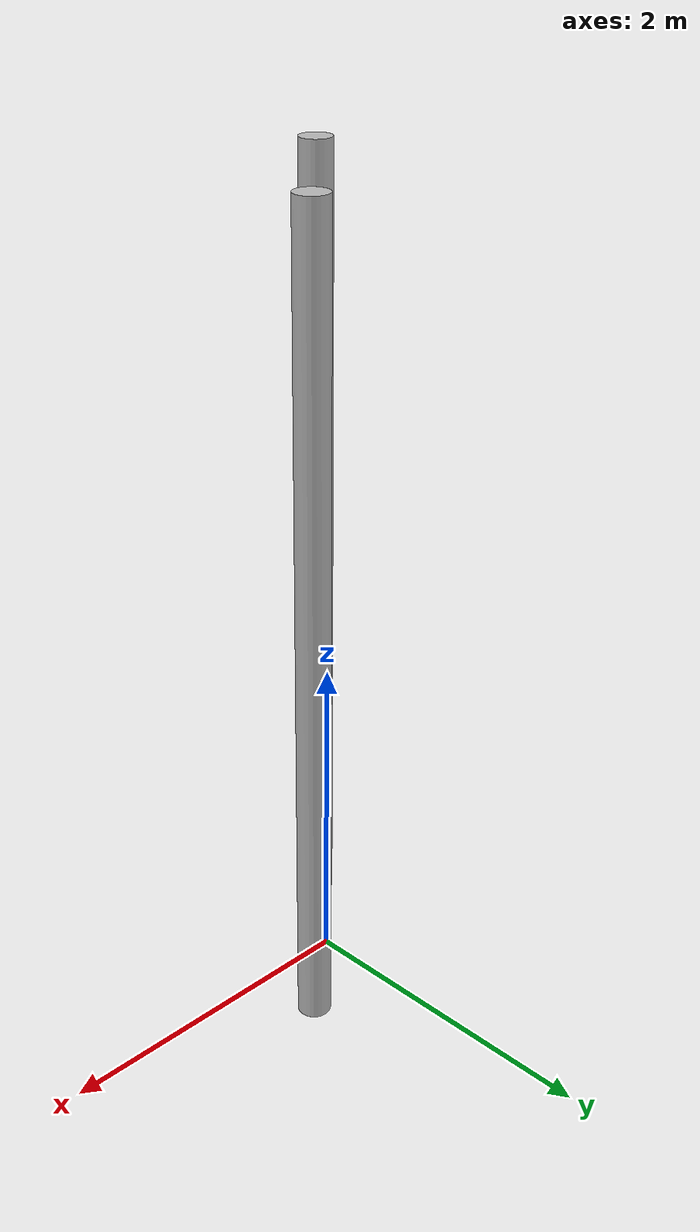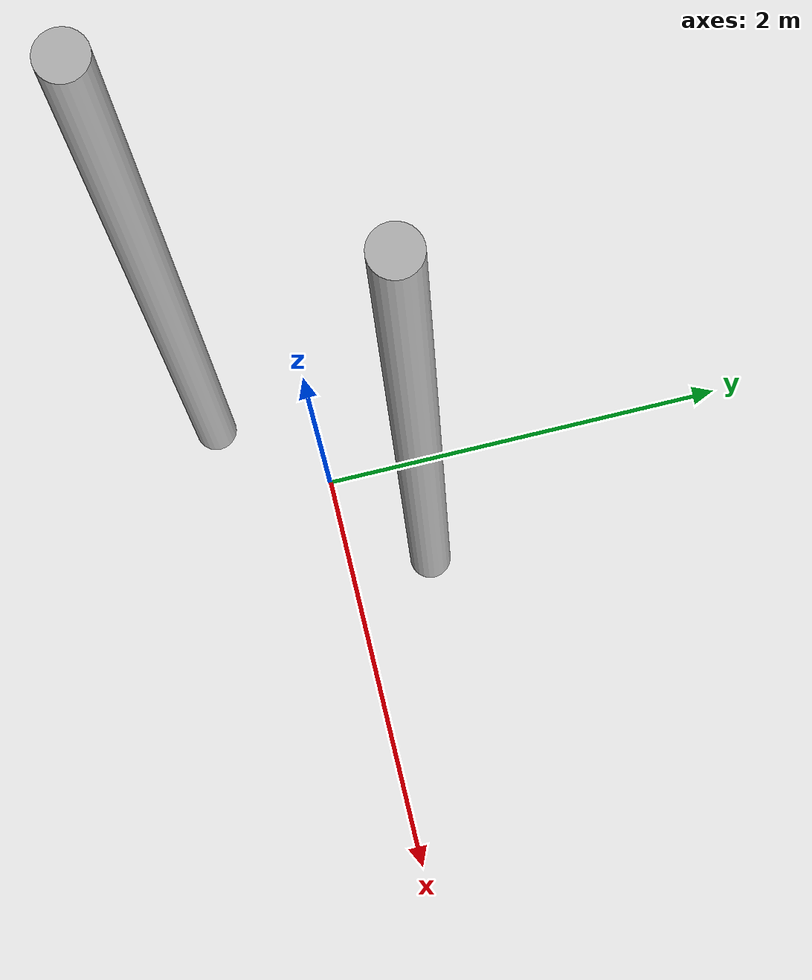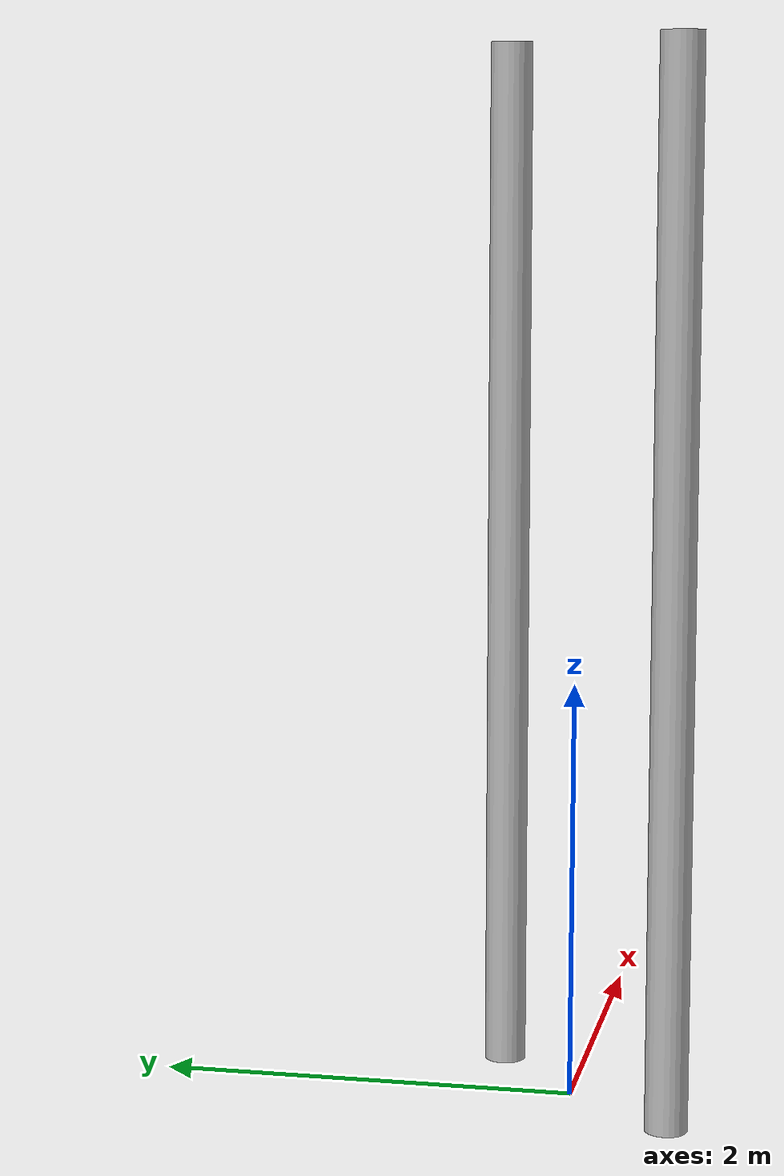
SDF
<?xml version="1.0" ?>
<sdf version='1.5'>
  <model name='default'>
      <link name="cylinder_1">
        <pose>-0.4 -0.5 2.5 0 -0 0</pose>
        <gravity>0</gravity>
        <collision name="collision_obs1">
          <pose>0 0 0 0 0 0</pose>
          <geometry>
            <cylinder>
                <radius>0.1</radius>
                <length>5</length>
            </cylinder>
          </geometry>
        </collision>
        <visual name="visual_obs1">
          <pose>0 0 0 0 0 0</pose>
          <geometry>
            <cylinder>
                <radius>0.1</radius>
                <length>5</length>
            </cylinder>
          </geometry>
        </visual>
      </link>

      <link name="cylinder_2">
        <pose>0.5 0.4 2.5 0 -0 0</pose>
        <gravity>0</gravity>
        <collision name="collision_obs1">
          <pose>0 0 0 0 0 0</pose>
          <geometry>
            <cylinder>
                <radius>0.1</radius>
                <length>5</length>
            </cylinder>
          </geometry>
        </collision>
        <visual name="visual_obs1">
          <pose>0 0 0 0 0 0</pose>
          <geometry>
            <cylinder>
                <radius>0.1</radius>
                <length>5</length>
            </cylinder>
          </geometry>
        </visual>
      </link>
  </model>
</sdf>
